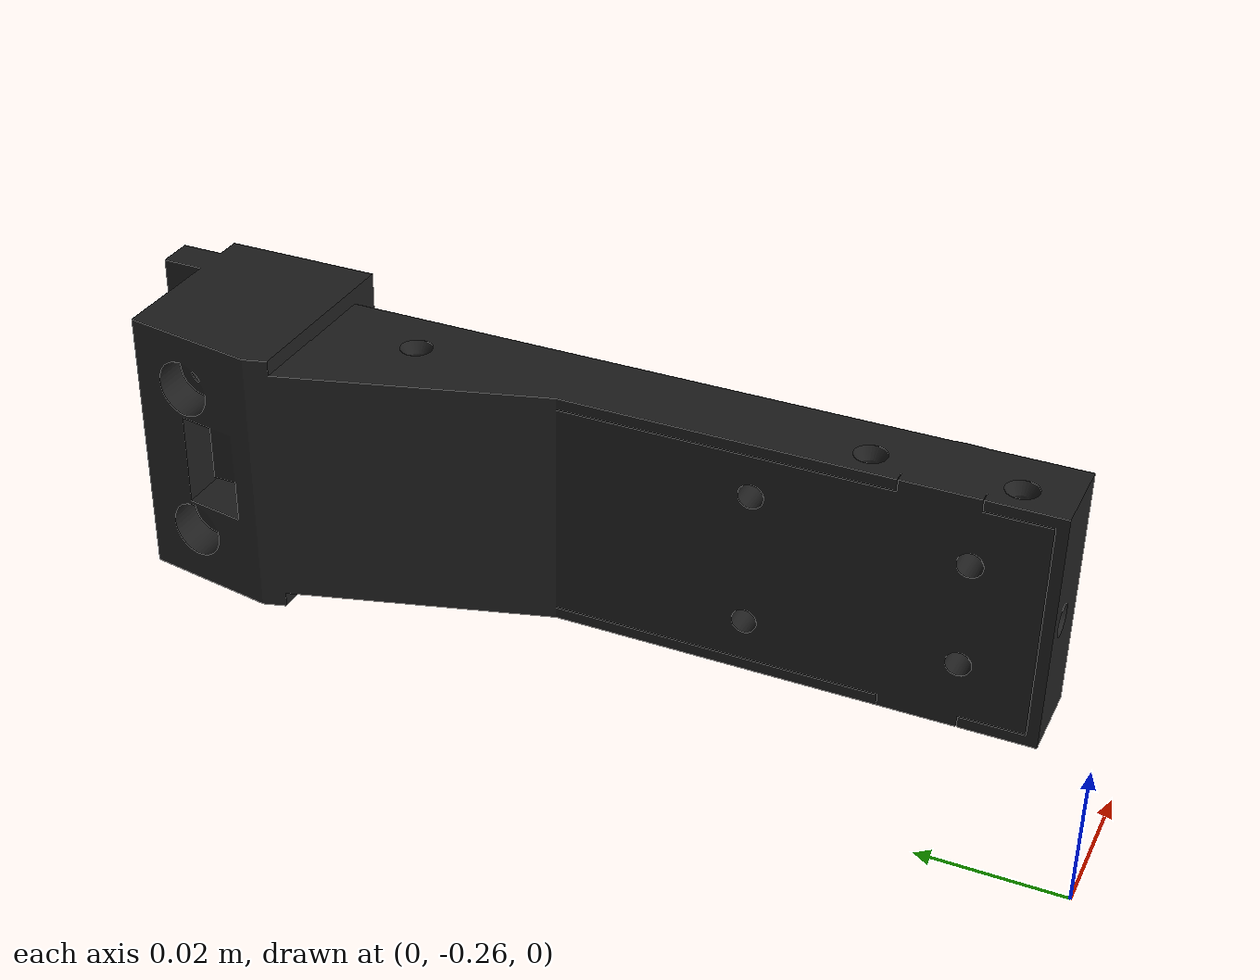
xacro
<?xml version='1.0' encoding='utf-8'?>
<robot xmlns:xacro="http://www.ros.org/wiki/xacro" name="tactile">

  <link name="base"></link>

  <xacro:include filename="$(find uclv_fingers_description_ros2)/fingers/uclv_tactile.urdf"/>
  <xacro:tactile_link base_link_1='base' xyz_1="0 0 0" rpy_1="0 0 0" base_link_2='base' xyz_2="0 0 0" rpy_2="0 0 0"/>
</robot>

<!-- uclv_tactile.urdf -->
<robot name="uclv_tactile"
    xmlns:xacro="http://www.ros.org/wiki/xacro">

    <xacro:macro name="tactile_link" params="base_link_1:='' xyz_1:='0 0 0' rpy_1:='0 0 0' base_link_2:='' xyz_2:='0 0 0' rpy_2:='0 0 0'">
        <xacro:unless value="${not base_link_1}">
            <joint name="$tactile_1_joint_${base_link_1}" type="fixed">
                <parent link="${base_link_1}"/>
                <child link="tactile_1"/>
                <origin rpy="${rpy_1}" xyz="${xyz_1}"/>
            </joint>
        </xacro:unless>

        <xacro:unless value="${not base_link_2}">
            <joint name="$tactile_2_joint_${base_link_2}" type="fixed">
                <parent link="${base_link_2}"/>
                <child link="tactile_2"/>
                <origin rpy="${rpy_2}" xyz="${xyz_2}"/>
            </joint>
        </xacro:unless>

    <link name="tactile_1">
        <inertial>
            <origin xyz="-0.0028157142675214186 -0.04814932465420843 -0.010573307928346813" rpy="0 0 0"/>
            <mass value="0.4046663410557083"/>
            <inertia ixx="0.000596" iyy="5.6e-05" izz="0.000573" ixy="-3e-05" iyz="-1e-06" ixz="-0.0"/>
        </inertial>
        <visual>
            <origin xyz="0 0 0" rpy="0 0 0"/>
            <geometry>
                <mesh filename="file://$(find uclv_fingers_description_ros2)/meshes/finger_refills.stl" scale="0.001 0.001 0.001"/>
            </geometry>
            <material name="black"/>
        </visual>
        <collision>
            <origin xyz="0 0 0" rpy="0 0 0"/>
            <geometry>
                <mesh filename="file://$(find uclv_fingers_description_ros2)/meshes/finger_refills.stl" scale="0.001 0.001 0.001"/>
            </geometry>
        </collision>
    </link>

    <link name="tactile_2">
        <inertial>
            <origin xyz="0.002830334344263878 -0.04812604253213226 -0.010675341666564392" rpy="0 0 0"/>
            <mass value="0.4046663410557083"/>
            <inertia ixx="0.000595" iyy="5.6e-05" izz="0.000573" ixy="3.5e-05" iyz="-2e-06" ixz="-0.0"/>
        </inertial>
        <visual>
            <origin xyz="0 0 0" rpy="0 0 0"/>
            <geometry>
                <mesh filename="file://$(find uclv_fingers_description_ros2)/meshes/finger_refills.stl" scale="0.001 0.001 0.001"/>
            </geometry>
            <material name="black"/>
        </visual>
        <collision>
            <origin xyz="0 0 0" rpy="0 0 0"/>
            <geometry>
                <mesh filename="file://$(find uclv_fingers_description_ros2)/meshes/finger_refills.stl" scale="0.001 0.001 0.001"/>
            </geometry>
        </collision>
    </link>
</xacro:macro>
</robot>
